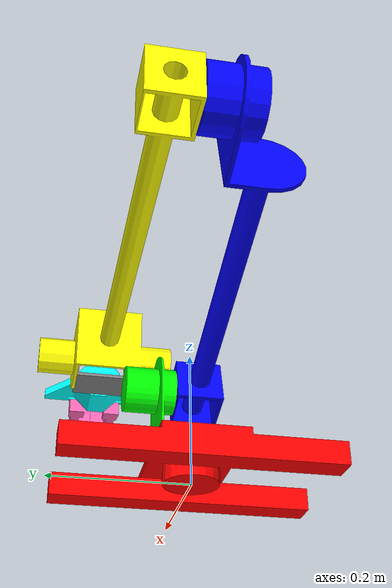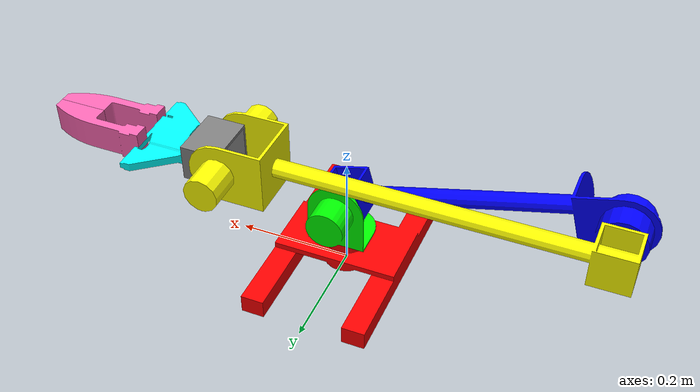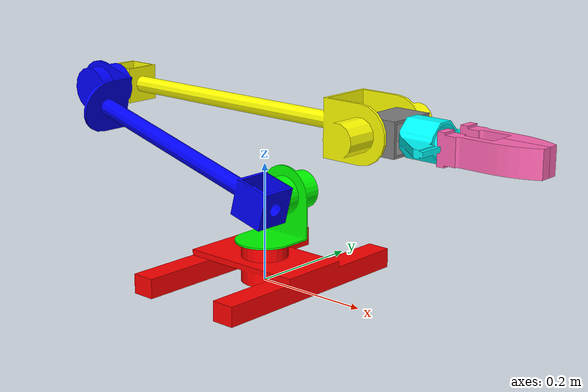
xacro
<?xml version="1.0"?>
<robot xmlns:xacro="http://www.ros.org/wiki/xacro" name="rover_arm_urdf">
    <xacro:arg name="initial_positions_file" default="initial_positions.yaml" />

    <!-- Import rover_arm_urdf urdf file -->
    <xacro:include filename="$(find rover_arm_urdf)/urdf/rover_arm_urdf.urdf" />

    <!-- Import control_xacro -->
    <xacro:include filename="rover_arm_urdf.ros2_control.xacro" />

    <xacro:rover_arm_urdf_ros2_control name="FakeSystem" initial_positions_file="$(arg initial_positions_file)"/>

</robot>

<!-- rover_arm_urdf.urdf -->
<robot name="rover_arm_urdf">

  <!-- Dummy link representing the Gazebo/RViz world -->
  <link name="world"/>

  <!-- Fixed joint locking the base_link to the world at the origin -->
  <joint name="fixed_to_ground" type="fixed">
    <parent link="world"/>
    <child link="base_link"/>
    <origin xyz="0 0 0" rpy="0 0 0"/>
  </joint>

  <link name="base_link">
    <inertial>
      <origin xyz="0 0 0.023286" rpy="0 0 0" />
      <mass value="1.7" />
      <inertia ixx="0.012861" ixy="7.8878E-18" ixz="8.6172E-20" iyy="0.0097973" iyz="-3.0639E-18" izz="0.021946" />
    </inertial>
    <visual>
      <origin xyz="0 0 0" rpy="0 0 0" />
      <geometry>
        <mesh filename="package://rover_arm_urdf/meshes/base_link.STL" />
      </geometry>
      <material name="red">
        <color rgba="1.0 0.0 0.0 1.0" />
      </material>
    </visual>
    <collision>
      <origin xyz="0 0 0" rpy="0 0 0" />
      <geometry>
        <mesh filename="package://rover_arm_urdf/meshes/base_link.STL" />
      </geometry>
    </collision>
  </link>

  <link name="link_1_shoulder">
    <inertial>
      <origin xyz="-2.2204E-16 0.054564 0.087166" rpy="0 0 0" />
      <mass value="0.85" />
      <inertia ixx="0.00040116" ixy="2.8121E-20" ixz="1.4151E-20" iyy="0.00030799" iyz="-9.3996E-05" izz="0.00030068" />
    </inertial>
    <visual>
      <origin xyz="0 0 0" rpy="0 0 0" />
      <geometry>
        <mesh filename="package://rover_arm_urdf/meshes/link_1_shoulder.STL" />
      </geometry>
      <material name="green">
        <color rgba="0.0 1.0 0.0 1.0" />
      </material>
    </visual>
    <collision>
      <origin xyz="0 0 0" rpy="0 0 0" />
      <geometry>
        <mesh filename="package://rover_arm_urdf/meshes/link_1_shoulder.STL" />
      </geometry>
    </collision>
  </link>

  <joint name="joint_1_base_roll" type="revolute">
    <origin xyz="0 0 0.043" rpy="0 0 0" />
    <parent link="base_link" />
    <child link="link_1_shoulder" />
    <axis xyz="0 0 -1" />
    <limit lower="-1.57" upper="1.57" effort="30" velocity="7.33" />
  </joint>

  <link name="link_2_upper_arm">
    <inertial>
      <origin xyz="0 0.035803 0.37386" rpy="0 0 0" />
      <mass value="1.25" />
      <inertia ixx="0.016635" ixy="2.513E-18" ixz="1.5138E-17" iyy="0.016301" iyz="-0.0020422" izz="0.00079791" />
    </inertial>
    <visual>
      <origin xyz="0 0 0" rpy="0 0 0" />
      <geometry>
        <mesh filename="package://rover_arm_urdf/meshes/link_2_upper_arm.STL" />
      </geometry>
      <material name="blue">
        <color rgba="0.0 0.0 1.0 1.0" />
      </material>
    </visual>
    <collision>
      <origin xyz="0 0 0" rpy="0 0 0" />
      <geometry>
        <mesh filename="package://rover_arm_urdf/meshes/link_2_upper_arm.STL" />
      </geometry>
    </collision>
  </link>

  <joint name="joint_2_shoulder_pitch" type="revolute">
    <origin xyz="0 -0.0075 0.095" rpy="0 -1.309 0" />
    <parent link="link_1_shoulder" />
    <child link="link_2_upper_arm" />
    <axis xyz="0 1 0" />
    <limit lower="0" upper="2.88" effort="30" velocity="7.33" />
  </joint>

  <link name="link_3_forearm">
    <inertial>
      <origin xyz="2.2204E-16 -0.00051512 0.47582" rpy="0 0 0" />
      <mass value="1.1" />
      <inertia ixx="0.029803" ixy="-1.0889E-17" ixz="-2.7175E-18" iyy="0.027869" iyz="-0.00014799" izz="0.0023647" />
    </inertial>
    <visual>
      <origin xyz="0 0 0" rpy="0 0 0" />
      <geometry>
        <mesh filename="package://rover_arm_urdf/meshes/link_3_forearm.STL" />
      </geometry>
      <material name="yellow">
        <color rgba="1.0 1.0 0.0 1.0" />
      </material>
    </visual>
    <collision>
      <origin xyz="0 0 0" rpy="0 0 0" />
      <geometry>
        <mesh filename="package://rover_arm_urdf/meshes/link_3_forearm.STL" />
      </geometry>
    </collision>
  </link>

  <joint name="joint_3_elbow_pitch" type="revolute">
    <origin xyz="0 0.1205 0.4725" rpy="3.1416 0.2618 3.1416" />
    <parent link="link_2_upper_arm" />
    <child link="link_3_forearm" />
    <axis xyz="0 1 0" />
    <limit lower="-2.88" upper="0" effort="30" velocity="7.33" />
  </joint>

  <link name="link_4_wrist_pitch_block">
    <inertial>
      <origin xyz="3.9968E-15 -3.5527E-15 0.0325" rpy="0 0 0" />
      <mass value="0.15" />
      <inertia ixx="0.0001303" ixy="-1.2395E-19" ixz="-8.7722E-20" iyy="8.3173E-05" iyz="2.1471E-19" izz="0.00014939" />
    </inertial>
    <visual>
      <origin xyz="0 0 0" rpy="0 0 0" />
      <geometry>
        <mesh filename="package://rover_arm_urdf/meshes/link_4_wrist_pitch_block.STL" />
      </geometry>
      <material name="gray">
        <color rgba="0.5 0.5 0.5 1.0" />
      </material>
    </visual>
    <collision>
      <origin xyz="0 0 0" rpy="0 0 0" />
      <geometry>
        <mesh filename="package://rover_arm_urdf/meshes/link_4_wrist_pitch_block.STL" />
      </geometry>
    </collision>
  </link>

  <joint name="joint_4_wrist_pitch" type="revolute">
    <origin xyz="0 0 0.6025" rpy="0 0 0" />
    <parent link="link_3_forearm" />
    <child link="link_4_wrist_pitch_block" />
    <axis xyz="0 1 0" />
    <limit lower="-1.57" upper="1.57" effort="8.5" velocity="9" />
  </joint>

  <link name="link_5_gripper_base">
    <inertial>
      <origin xyz="5.107E-15 -3.4417E-15 0.0088428" rpy="0 0 0" />
      <mass value="0.5" />
      <inertia ixx="0.00033407" ixy="1.4235E-10" ixz="-3.7651E-20" iyy="0.00011758" iyz="-3.2712E-19" izz="0.00027803" />
    </inertial>
    <visual>
      <origin xyz="0 0 0" rpy="0 0 0" />
      <geometry>
        <mesh filename="package://rover_arm_urdf/meshes/link_5_gripper_base.STL" />
      </geometry>
      <material name="cyan">
        <color rgba="0.0 1.0 1.0 1.0" />
      </material>
    </visual>
    <collision>
      <origin xyz="0 0 0" rpy="0 0 0" />
      <geometry>
        <mesh filename="package://rover_arm_urdf/meshes/link_5_gripper_base.STL" />
      </geometry>
    </collision>
  </link>

  <joint name="joint_5_wrist_roll" type="revolute">
    <origin xyz="0 0 0.09675" rpy="0 0 0" />
    <parent link="link_4_wrist_pitch_block" />
    <child link="link_5_gripper_base" />
    <axis xyz="0 0 1" />
    <limit lower="-3.142" upper="3.142" effort="8.5" velocity="9" />
  </joint>

  <link name="link_6_left_jaw">
    <inertial>
      <origin xyz="4.4409E-16 0.0052044 0.082559" rpy="0 0 0" />
      <mass value="0.1" />
      <inertia ixx="0.0004917" ixy="6.5314E-20" ixz="5.4773E-19" iyy="0.00050517" iyz="6.4273E-05" izz="6.3079E-05" />
    </inertial>
    <visual>
      <origin xyz="0 0 0" rpy="0 0 0" />
      <geometry>
        <mesh filename="package://rover_arm_urdf/meshes/link_6_left_jaw.STL" />
      </geometry>
      <material name="pink">
        <color rgba="1.0 0.4 0.7 1.0" />
      </material>
    </visual>
    <collision>
      <origin xyz="0 0 0" rpy="0 0 0" />
      <geometry>
        <mesh filename="package://rover_arm_urdf/meshes/link_6_left_jaw.STL" />
      </geometry>
    </collision>
  </link>

  <joint name="joint_6_left_jaw" type="prismatic">
    <origin xyz="0 0.016961 0.05375" rpy="0 0 0" />
    <parent link="link_5_gripper_base" />
    <child link="link_6_left_jaw" />
    <axis xyz="0 1 0" />
    <limit lower="0" upper="0.045" effort="50" velocity="0.1" />
  </joint>

  <link name="link_7_right_jaw">
    <inertial>
      <origin xyz="2.8866E-15 -0.0052044 0.082559" rpy="0 0 0" />
      <mass value="0.1" />
      <inertia ixx="0.0004917" ixy="5.1877E-20" ixz="-5.0038E-19" iyy="0.00050517" iyz="-6.4273E-05" izz="6.3079E-05" />
    </inertial>
    <visual>
      <origin xyz="0 0 0" rpy="0 0 0" />
      <geometry>
        <mesh filename="package://rover_arm_urdf/meshes/link_7_right_jaw.STL" />
      </geometry>
      <material name="pink">
        <color rgba="1.0 0.4 0.7 1.0" />
      </material>
    </visual>
    <collision>
      <origin xyz="0 0 0" rpy="0 0 0" />
      <geometry>
        <mesh filename="package://rover_arm_urdf/meshes/link_7_right_jaw.STL" />
      </geometry>
    </collision>
  </link>

  <joint name="joint_7_right_jaw" type="prismatic">
    <origin xyz="0 -0.016961 0.05375" rpy="0 0 0" />
    <parent link="link_5_gripper_base" />
    <child link="link_7_right_jaw" />
    <axis xyz="0 1 0" />
    <limit lower="0" upper="0.045" effort="50" velocity="0.1" />
    <mimic joint="joint_6_left_jaw" multiplier="-1" offset="0" />
  </joint>

  <ros2_control name="RoverArmSystem" type="system">
    <hardware>
      <plugin>gz_ros2_control/GazeboSimSystem</plugin>
    </hardware>
    <joint name="joint_1_base_roll">
      <command_interface name="position"/>
      <state_interface name="position"/>
      <state_interface name="velocity"/>
    </joint>
    <joint name="joint_2_shoulder_pitch">
      <command_interface name="position"/>
      <state_interface name="position"/>
      <state_interface name="velocity"/>
    </joint>
    <joint name="joint_3_elbow_pitch">
      <command_interface name="position"/>
      <state_interface name="position"/>
      <state_interface name="velocity"/>
    </joint>
    <joint name="joint_4_wrist_pitch">
      <command_interface name="position"/>
      <state_interface name="position"/>
      <state_interface name="velocity"/>
    </joint>
    <joint name="joint_5_wrist_roll">
      <command_interface name="position"/>
      <state_interface name="position"/>
      <state_interface name="velocity"/>
    </joint>
    <joint name="joint_6_left_jaw">
      <command_interface name="position"/>
      <state_interface name="position"/>
      <state_interface name="velocity"/>
    </joint>
  </ros2_control>

  <gazebo>
    <plugin filename="gz_ros2_control-system" name="gz_ros2_control::GazeboSimROS2ControlPlugin">
      <parameters>__ROS2_CONTROLLERS_YAML_PATH__</parameters>
    </plugin>
  </gazebo>

</robot>
